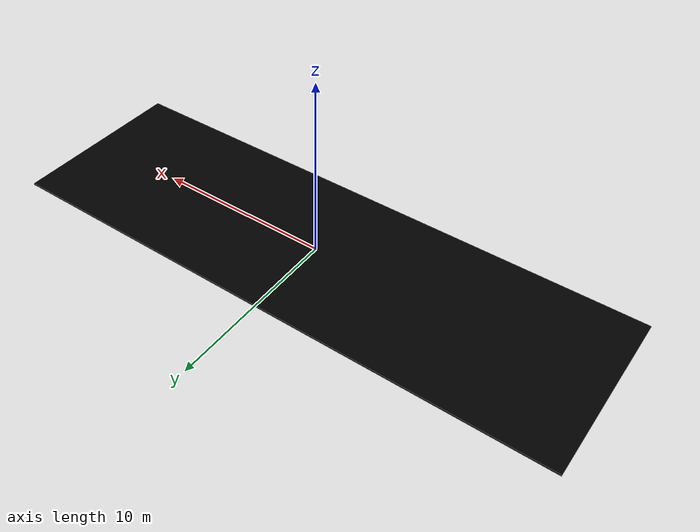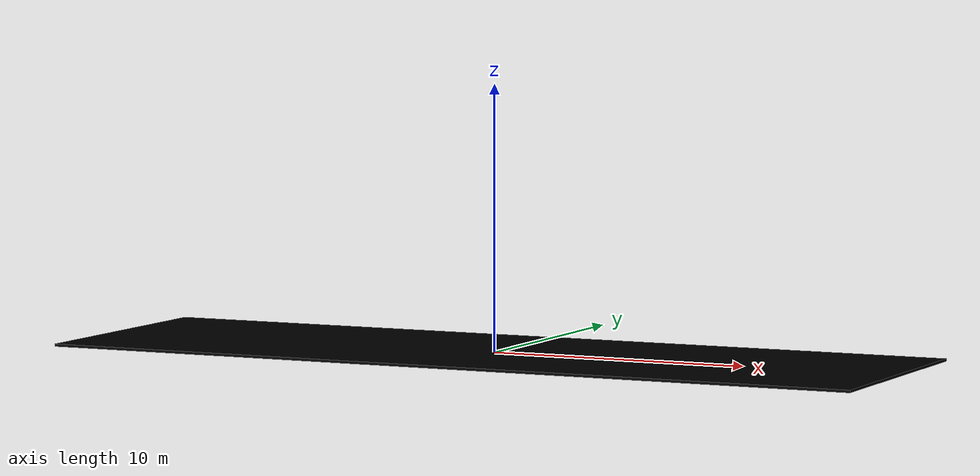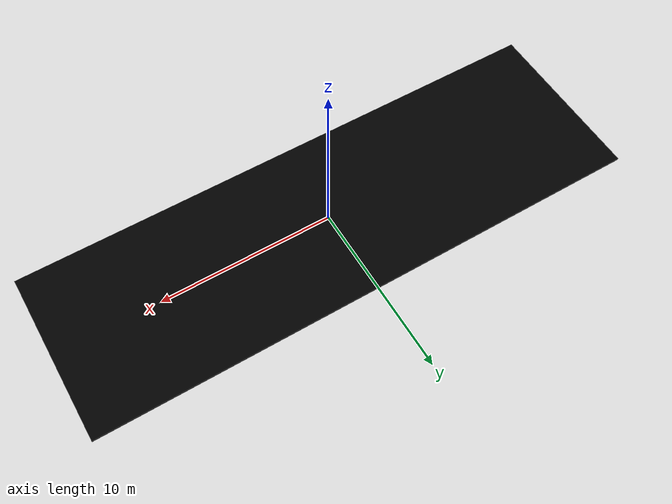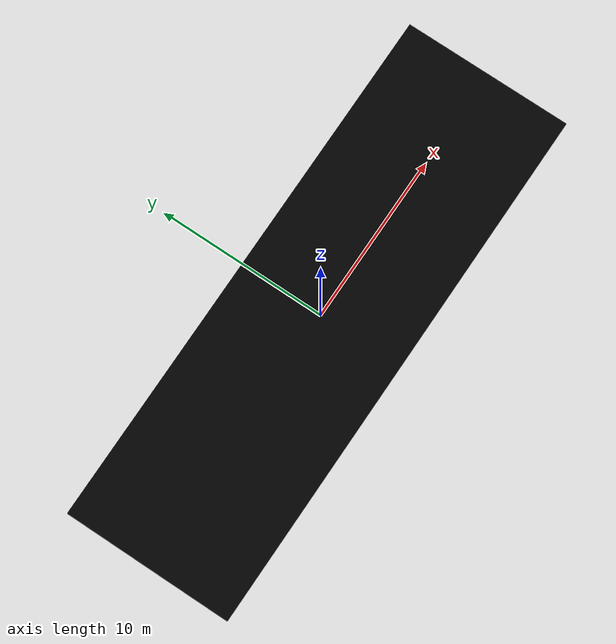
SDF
<?xml version='1.0'?>
<sdf version='1.6'>
  <model name='crop_01'>
    <link name='crop_01_0::link_0'>
      <pose frame=''>0 0 0 0 -0 0</pose>
      <inertial>
        <mass>10.9148</mass>
        <inertia>
          <ixx>13.7036</ixx>
          <ixy>0</ixy>
          <ixz>0</ixz>
          <iyy>702.087</iyy>
          <iyz>0</iyz>
          <izz>715.772</izz>
        </inertia>
        <pose frame=''>0 0 0 0 -0 0</pose>
      </inertial>
      <self_collide>0</self_collide>
      <kinematic>0</kinematic>
      <gravity>1</gravity>
      <visual name='visual'>
        <pose frame=''>0 0 0 0 -0 0</pose>
        <geometry>
          <box>
            <size>32 10 0.101276</size>
          </box>
        </geometry>
        <material>
          <ambient>0 1 0 1</ambient>
          <diffuse>0 0 0 1</diffuse>
          <specular>0.1 0.1 0.1 1</specular>
          <emissive>0 0 0 0</emissive>
        </material>
        <cast_shadows>1</cast_shadows>
        <transparency>0</transparency>
      </visual>
      <collision name='collision'>
        <laser_retro>0</laser_retro>
        <max_contacts>10</max_contacts>
        <pose frame=''>0 0 0 0 -0 0</pose>
        <geometry>
          <box>
            <size>32 10 0.101276</size>
          </box>
        </geometry>
        <surface>
          <friction>
            <ode>
              <mu>1</mu>
              <mu2>1</mu2>
              <fdir1>0 0 0</fdir1>
              <slip1>0</slip1>
              <slip2>0</slip2>
            </ode>
            <torsional>
              <coefficient>1</coefficient>
              <patch_radius>0</patch_radius>
              <surface_radius>0</surface_radius>
              <use_patch_radius>1</use_patch_radius>
              <ode>
                <slip>0</slip>
              </ode>
            </torsional>
          </friction>
          <bounce>
            <restitution_coefficient>0</restitution_coefficient>
            <threshold>1e+06</threshold>
          </bounce>
          <contact>
            <collide_without_contact>0</collide_without_contact>
            <collide_without_contact_bitmask>1</collide_without_contact_bitmask>
            <collide_bitmask>1</collide_bitmask>
            <ode>
              <soft_cfm>0</soft_cfm>
              <soft_erp>0.2</soft_erp>
              <kp>1e+13</kp>
              <kd>1</kd>
              <max_vel>0.01</max_vel>
              <min_depth>0</min_depth>
            </ode>
            <bullet>
              <split_impulse>1</split_impulse>
              <split_impulse_penetration_threshold>-0.01</split_impulse_penetration_threshold>
              <soft_cfm>0</soft_cfm>
              <soft_erp>0.2</soft_erp>
              <kp>1e+13</kp>
              <kd>1</kd>
            </bullet>
          </contact>
        </surface>
      </collision>
    </link>
    <static>0</static>
    <allow_auto_disable>1</allow_auto_disable>
  </model>
</sdf>
